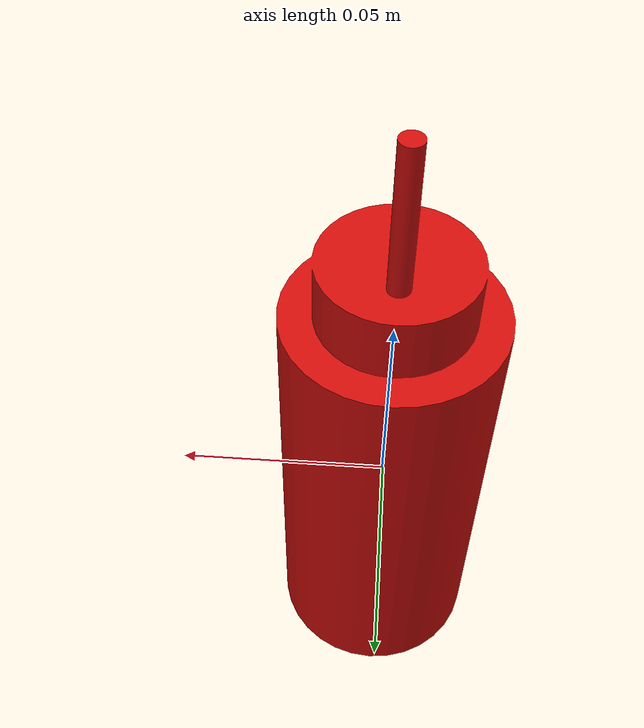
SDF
<?xml version="1.0"?>
<sdf version="1.9">
  <model name="kachup">
    <static>false</static>
    <link name="kachup_link">
      <velocity_decay>
        <linear>0.500000</linear>
        <angular>1.000000</angular>
      </velocity_decay>
      <inertial>
        <mass>0.080000</mass>
        <inertia>
          <ixx>0.000080000</ixx>
          <iyy>0.000080000</iyy>
          <izz>0.000080000</izz>
          <ixy>0</ixy>
          <ixz>0</ixz>
          <iyz>0</iyz>
        </inertia>
      </inertial>
      <visual name="kachup_visual">
        <geometry>
          <mesh>
            <uri>meshes/kachup.obj</uri>
          </mesh>
        </geometry>
        <material>
          <ambient>0.205000 0.012500 0.010000 1.000000</ambient>
          <diffuse>0.820000 0.050000 0.040000 1.000000</diffuse>
          <specular>0.120000 0.120000 0.120000 1.000000</specular>
        </material>
      </visual>
      <collision name="kachup_kachup_body_collision">
        <pose>0.000000000 0.000000000 0.000000000 0 0 0</pose>
        <geometry>
          <cylinder>
            <radius>0.025000000</radius>
            <length>0.109999999</length>
          </cylinder>
        </geometry>
        <max_contacts>20</max_contacts>
        <surface>
          <friction>
            <ode>
              <mu>8.0</mu>
              <mu2>8.0</mu2>
              <slip1>0.0</slip1>
              <slip2>0.0</slip2>
            </ode>
            <torsional>
              <coefficient>1.0</coefficient>
              <use_patch_radius>true</use_patch_radius>
              <patch_radius>0.020000</patch_radius>
              <surface_radius>0.010000</surface_radius>
              <ode>
                <slip>0.0</slip>
              </ode>
            </torsional>
          </friction>
          <contact>
            <ode>
              <soft_cfm>0.000000</soft_cfm>
              <soft_erp>0.800000</soft_erp>
              <kp>1000000.000000</kp>
              <kd>100.000000</kd>
              <max_vel>0.010000</max_vel>
              <min_depth>0.002000</min_depth>
            </ode>
          </contact>
        </surface>
      </collision>
      <collision name="kachup_kachup_cap_collision">
        <pose>0.000000000 0.000000000 0.062567294 0 0 0</pose>
        <geometry>
          <cylinder>
            <radius>0.017500000</radius>
            <length>0.015000001</length>
          </cylinder>
        </geometry>
        <max_contacts>20</max_contacts>
        <surface>
          <friction>
            <ode>
              <mu>8.0</mu>
              <mu2>8.0</mu2>
              <slip1>0.0</slip1>
              <slip2>0.0</slip2>
            </ode>
            <torsional>
              <coefficient>1.0</coefficient>
              <use_patch_radius>true</use_patch_radius>
              <patch_radius>0.020000</patch_radius>
              <surface_radius>0.010000</surface_radius>
              <ode>
                <slip>0.0</slip>
              </ode>
            </torsional>
          </friction>
          <contact>
            <ode>
              <soft_cfm>0.000000</soft_cfm>
              <soft_erp>0.800000</soft_erp>
              <kp>1000000.000000</kp>
              <kd>100.000000</kd>
              <max_vel>0.010000</max_vel>
              <min_depth>0.002000</min_depth>
            </ode>
          </contact>
        </surface>
      </collision>
      <collision name="kachup_kachup_nozzle_collision">
        <pose>0.000000000 0.007739812 0.087401330 0 0 0</pose>
        <geometry>
          <cylinder>
            <radius>0.002500000</radius>
            <length>0.034999996</length>
          </cylinder>
        </geometry>
        <max_contacts>20</max_contacts>
        <surface>
          <friction>
            <ode>
              <mu>8.0</mu>
              <mu2>8.0</mu2>
              <slip1>0.0</slip1>
              <slip2>0.0</slip2>
            </ode>
            <torsional>
              <coefficient>1.0</coefficient>
              <use_patch_radius>true</use_patch_radius>
              <patch_radius>0.020000</patch_radius>
              <surface_radius>0.010000</surface_radius>
              <ode>
                <slip>0.0</slip>
              </ode>
            </torsional>
          </friction>
          <contact>
            <ode>
              <soft_cfm>0.000000</soft_cfm>
              <soft_erp>0.800000</soft_erp>
              <kp>1000000.000000</kp>
              <kd>100.000000</kd>
              <max_vel>0.010000</max_vel>
              <min_depth>0.002000</min_depth>
            </ode>
          </contact>
        </surface>
      </collision>
    </link>
  </model>
</sdf>
